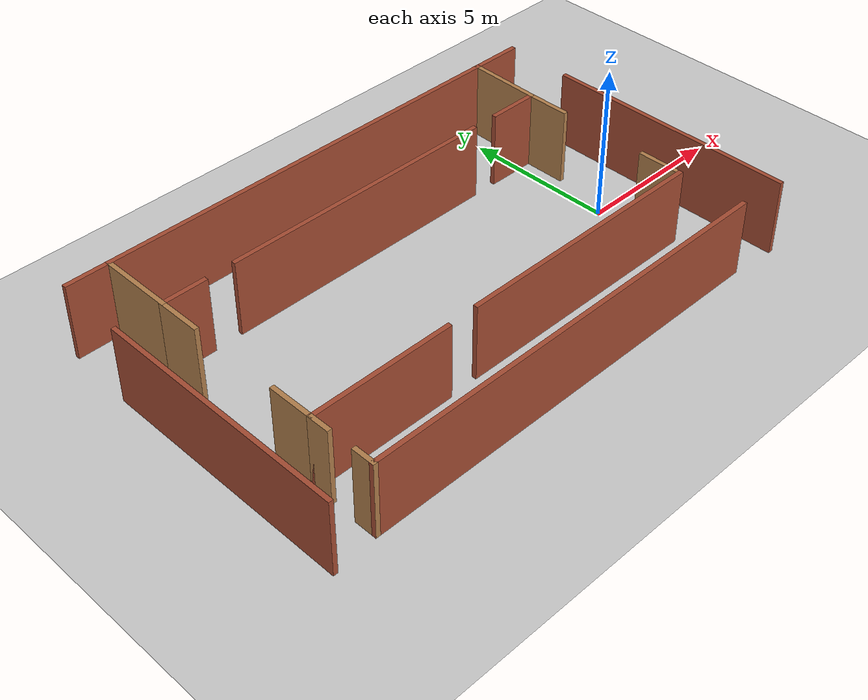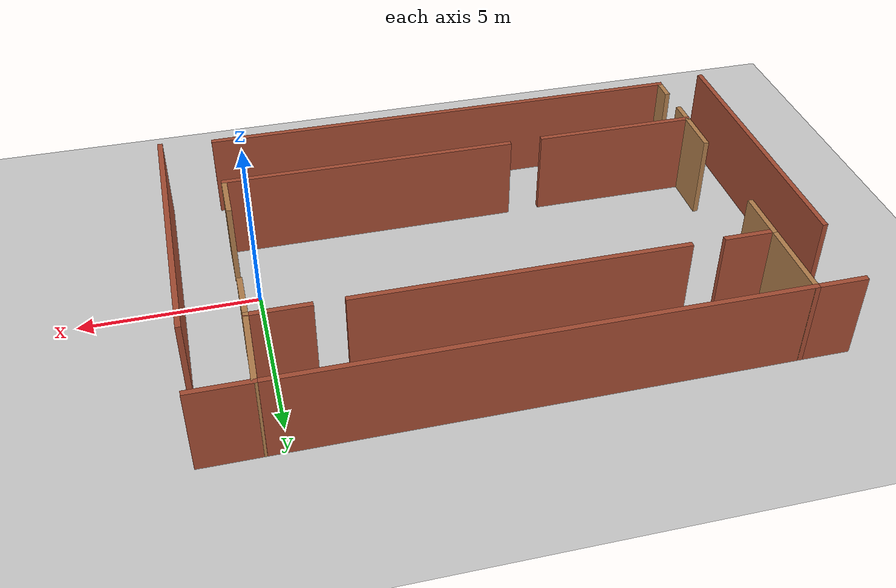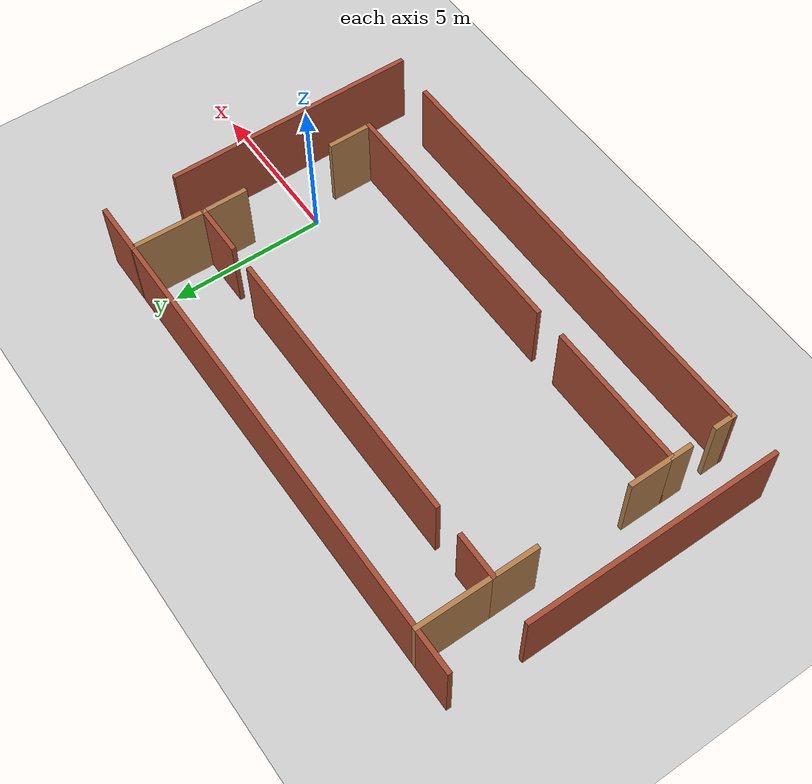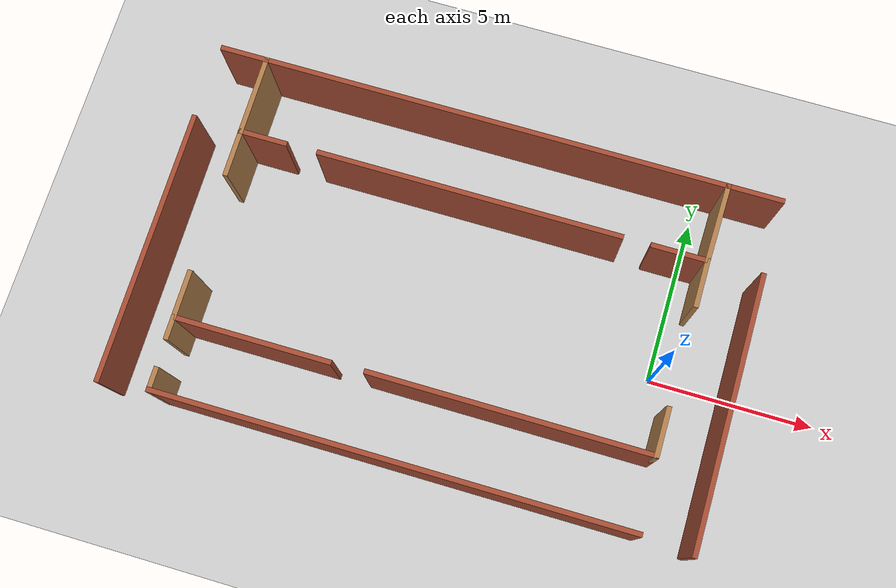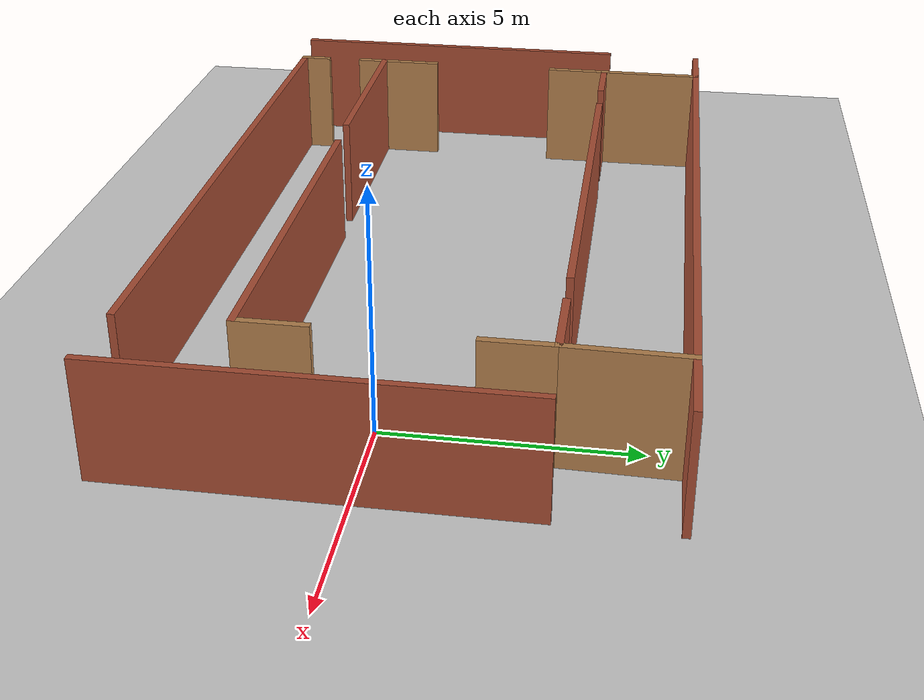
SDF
<sdf version="1.4">
 <world name="default">
  <model name="ground_plane">
   <static>1</static>
   <link name="link">
    <collision name="collision">
     <geometry><plane><normal>0 0 1</normal><size>100 100</size></plane></geometry>
     <surface><friction><ode><mu>100</mu><mu2>50</mu2></ode></friction></surface>
    </collision>
    <visual name="visual">
     <cast_shadows>0</cast_shadows>
     <geometry><plane><normal>0 0 1</normal><size>100 100</size></plane></geometry>
     <material>
      <script><uri>file://media/materials/scripts/gazebo.material</uri><name>Gazebo/Tertiary</name></script>
     </material>
    </visual>
   </link>
  </model>
  <light name="sun" type="directional">
   <pose>0 0 10 0 -0 0</pose>
   <diffuse>0.8 0.8 0.8 1</diffuse>
   <specular>0.2 0.2 0.2 1</specular>
   <attenuation>
    <range>1000</range>
    <constant>0.9</constant>
    <linear>0.01</linear>
    <quadratic>0.001</quadratic>
   </attenuation>
   <direction>-0.5 0.1 -0.9</direction>
  </light>
  <include><uri>model://conference-room</uri><pose>-6.39 0.5 0 0 0 0</pose></include>
 </world>
</sdf>

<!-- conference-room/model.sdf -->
<sdf version='1.6'>
  <model name='conference-room'>
    <pose frame=''>-0.185861 -2.06605 0 0 -0 0</pose>
    <link name='Wall_1'>
      <collision name='Wall_1_Collision'>
        <geometry>
          <box>
            <size>14.25 0.15 2.5</size>
          </box>
        </geometry>
        <pose frame=''>0 0 1.25 0 -0 0</pose>
      </collision>
      <visual name='Wall_1_Visual'>
        <pose frame=''>0 0 1.25 0 -0 0</pose>
        <geometry>
          <box>
            <size>14.25 0.15 2.5</size>
          </box>
        </geometry>
        <material>
          <script>
            <uri>file://media/materials/scripts/gazebo.material</uri>
            <name>Gazebo/Bricks</name>
          </script>
          <ambient>1 1 1 1</ambient>
        </material>
        <meta>
          <layer>0</layer>
        </meta>
      </visual>
      <pose frame=''>-0.055133 -5.08196 0 0 -0 3.14159</pose>
    </link>
    <link name='Wall_14'>
      <collision name='Wall_14_Collision'>
        <geometry>
          <box>
            <size>8.5 0.15 2.5</size>
          </box>
        </geometry>
        <pose frame=''>0 0 1.25 0 -0 0</pose>
      </collision>
      <visual name='Wall_14_Visual'>
        <pose frame=''>0 0 1.25 0 -0 0</pose>
        <geometry>
          <box>
            <size>8.5 0.15 2.5</size>
          </box>
        </geometry>
        <material>
          <script>
            <uri>file://media/materials/scripts/gazebo.material</uri>
            <name>Gazebo/Bricks</name>
          </script>
          <ambient>1 1 1 1</ambient>
        </material>
        <meta>
          <layer>0</layer>
        </meta>
      </visual>
      <pose frame=''>2.7317 -2.90765 0 0 -0 0</pose>
    </link>
    <link name='Wall_16'>
      <collision name='Wall_16_Collision'>
        <geometry>
          <box>
            <size>1.5 0.15 2.5</size>
          </box>
        </geometry>
        <pose frame=''>0 0 1.25 0 -0 0</pose>
      </collision>
      <visual name='Wall_16_Visual'>
        <pose frame=''>0 0 1.25 0 -0 0</pose>
        <geometry>
          <box>
            <size>1.5 0.15 2.5</size>
          </box>
        </geometry>
        <material>
          <script>
            <uri>file://media/materials/scripts/gazebo.material</uri>
            <name>Gazebo/Wood</name>
          </script>
          <ambient>1 1 1 1</ambient>
        </material>
        <meta>
          <layer>0</layer>
        </meta>
      </visual>
      <pose frame=''>-7.13307 -2.26441 0 0 -0 1.5708</pose>
    </link>
    <link name='Wall_18'>
      <collision name='Wall_18_Collision'>
        <geometry>
          <box>
            <size>1.5 0.15 2.5</size>
          </box>
        </geometry>
        <pose frame=''>0 0 1.25 0 -0 0</pose>
      </collision>
      <visual name='Wall_18_Visual'>
        <pose frame=''>0 0 1.25 0 -0 0</pose>
        <geometry>
          <box>
            <size>1.5 0.15 2.5</size>
          </box>
        </geometry>
        <material>
          <script>
            <uri>file://media/materials/scripts/gazebo.material</uri>
            <name>Gazebo/Wood</name>
          </script>
          <ambient>1 1 1 1</ambient>
        </material>
        <meta>
          <layer>0</layer>
        </meta>
      </visual>
      <pose frame=''>-7.1195 2.18742 0 0 -0 1.5708</pose>
    </link>
    <link name='Wall_19'>
      <collision name='Wall_19_Collision'>
        <geometry>
          <box>
            <size>1.5 0.15 2.5</size>
          </box>
        </geometry>
        <pose frame=''>0 0 1.25 0 -0 0</pose>
      </collision>
      <visual name='Wall_19_Visual'>
        <pose frame=''>0 0 1.25 0 -0 0</pose>
        <geometry>
          <box>
            <size>1.5 0.15 2.5</size>
          </box>
        </geometry>
        <material>
          <script>
            <uri>file://media/materials/scripts/gazebo.material</uri>
            <name>Gazebo/Bricks</name>
          </script>
          <ambient>1 1 1 1</ambient>
        </material>
        <meta>
          <layer>0</layer>
        </meta>
      </visual>
      <pose frame=''>-6.4445 2.86242 0 0 -0 0</pose>
    </link>
    <link name='Wall_22'>
      <collision name='Wall_22_Collision'>
        <geometry>
          <box>
            <size>9.25 0.15 2.5</size>
          </box>
        </geometry>
        <pose frame=''>0 0 1.25 0 -0 0</pose>
      </collision>
      <visual name='Wall_22_Visual'>
        <pose frame=''>0 0 1.25 0 -0 0</pose>
        <geometry>
          <box>
            <size>9.25 0.15 2.5</size>
          </box>
        </geometry>
        <material>
          <script>
            <uri>file://media/materials/scripts/gazebo.material</uri>
            <name>Gazebo/Bricks</name>
          </script>
          <ambient>1 1 1 1</ambient>
        </material>
        <meta>
          <layer>0</layer>
        </meta>
      </visual>
      <pose frame=''>-0.166933 2.87736 0 0 -0 0</pose>
    </link>
    <link name='Wall_24'>
      <collision name='Wall_24_Collision'>
        <geometry>
          <box>
            <size>1.75 0.15 2.5</size>
          </box>
        </geometry>
        <pose frame=''>0 0 1.25 0 -0 0</pose>
      </collision>
      <visual name='Wall_24_Visual'>
        <pose frame=''>0 0 1.25 0 -0 0</pose>
        <geometry>
          <box>
            <size>1.75 0.15 2.5</size>
          </box>
        </geometry>
        <material>
          <script>
            <uri>file://media/materials/scripts/gazebo.material</uri>
            <name>Gazebo/Bricks</name>
          </script>
          <ambient>1 1 1 1</ambient>
        </material>
        <meta>
          <layer>0</layer>
        </meta>
      </visual>
      <pose frame=''>6.1308 2.87434 0 0 -0 0</pose>
    </link>
    <link name='Wall_27'>
      <collision name='Wall_27_Collision'>
        <geometry>
          <box>
            <size>2.5 0.15 2.5</size>
          </box>
        </geometry>
        <pose frame=''>0 0 1.25 0 -0 0</pose>
      </collision>
      <visual name='Wall_27_Visual'>
        <pose frame=''>0 0 1.25 0 -0 0</pose>
        <geometry>
          <box>
            <size>2.5 0.15 2.5</size>
          </box>
        </geometry>
        <material>
          <script>
            <uri>file://media/materials/scripts/gazebo.material</uri>
            <name>Gazebo/Wood</name>
          </script>
          <ambient>1 1 1 1</ambient>
        </material>
        <meta>
          <layer>0</layer>
        </meta>
      </visual>
      <pose frame=''>-7.1195 4.03742 0 0 -0 1.5708</pose>
    </link>
    <link name='Wall_28'>
      <collision name='Wall_28_Collision'>
        <geometry>
          <box>
            <size>14.25 0.15 2.5</size>
          </box>
        </geometry>
        <pose frame=''>0 0 1.25 0 -0 0</pose>
      </collision>
      <visual name='Wall_28_Visual'>
        <pose frame=''>0 0 1.25 0 -0 0</pose>
        <geometry>
          <box>
            <size>14.25 0.15 2.5</size>
          </box>
        </geometry>
        <material>
          <script>
            <uri>file://media/materials/scripts/gazebo.material</uri>
            <name>Gazebo/Bricks</name>
          </script>
          <ambient>1 1 1 1</ambient>
        </material>
        <meta>
          <layer>0</layer>
        </meta>
      </visual>
      <pose frame=''>-0.069499 5.21242 0 0 -0 0</pose>
    </link>
    <link name='Wall_29'>
      <collision name='Wall_29_Collision'>
        <geometry>
          <box>
            <size>2.4886 0.15 2.5</size>
          </box>
        </geometry>
        <pose frame=''>0 0 1.25 0 -0 0</pose>
      </collision>
      <visual name='Wall_29_Visual'>
        <pose frame=''>0 0 1.25 0 -0 0</pose>
        <geometry>
          <box>
            <size>2.4886 0.15 2.5</size>
          </box>
        </geometry>
        <material>
          <script>
            <uri>file://media/materials/scripts/gazebo.material</uri>
            <name>Gazebo/Wood</name>
          </script>
          <ambient>1 1 1 1</ambient>
        </material>
        <meta>
          <layer>0</layer>
        </meta>
      </visual>
      <pose frame=''>6.95565 4.04338 0 0 -0 -1.59205</pose>
    </link>
    <link name='Wall_31'>
      <collision name='Wall_31_Collision'>
        <geometry>
          <box>
            <size>1.5 0.15 2.5</size>
          </box>
        </geometry>
        <pose frame=''>0 0 1.25 0 -0 0</pose>
      </collision>
      <visual name='Wall_31_Visual'>
        <pose frame=''>0 0 1.25 0 -0 0</pose>
        <geometry>
          <box>
            <size>1.5 0.15 2.5</size>
          </box>
        </geometry>
        <material>
          <script>
            <uri>file://media/materials/scripts/gazebo.material</uri>
            <name>Gazebo/Wood</name>
          </script>
          <ambient>1 1 1 1</ambient>
        </material>
        <meta>
          <layer>0</layer>
        </meta>
      </visual>
      <pose frame=''>6.9067 -2.23265 0 0 -0 1.5708</pose>
    </link>
    <link name='Wall_33'>
      <collision name='Wall_33_Collision'>
        <geometry>
          <box>
            <size>1.5 0.15 2.5</size>
          </box>
        </geometry>
        <pose frame=''>0 0 1.25 0 -0 0</pose>
      </collision>
      <visual name='Wall_33_Visual'>
        <pose frame=''>0 0 1.25 0 -0 0</pose>
        <geometry>
          <box>
            <size>1.5 0.15 2.5</size>
          </box>
        </geometry>
        <material>
          <script>
            <uri>file://media/materials/scripts/gazebo.material</uri>
            <name>Gazebo/Wood</name>
          </script>
          <ambient>1 1 1 1</ambient>
        </material>
        <meta>
          <layer>0</layer>
        </meta>
      </visual>
      <pose frame=''>6.9308 2.19935 0 0 -0 -1.5708</pose>
    </link>
    <link name='Wall_35'>
      <collision name='Wall_35_Collision'>
        <geometry>
          <box>
            <size>8.25 0.15 2.5</size>
          </box>
        </geometry>
        <pose frame=''>0 0 1.25 0 -0 0</pose>
      </collision>
      <visual name='Wall_35_Visual'>
        <pose frame=''>0 0 1.25 0 -0 0</pose>
        <geometry>
          <box>
            <size>8.25 0.15 2.5</size>
          </box>
        </geometry>
        <material>
          <script>
            <uri>file://media/materials/scripts/gazebo.material</uri>
            <name>Gazebo/Bricks</name>
          </script>
          <ambient>1 1 1 1</ambient>
        </material>
        <meta>
          <layer>0</layer>
        </meta>
      </visual>
      <pose frame=''>-8.5805 -1.164 0 0 -0 -1.5708</pose>
    </link>
    <link name='Wall_37'>
      <collision name='Wall_37_Collision'>
        <geometry>
          <box>
            <size>8.25 0.15 2.5</size>
          </box>
        </geometry>
        <pose frame=''>0 0 1.25 0 -0 0</pose>
      </collision>
      <visual name='Wall_37_Visual'>
        <pose frame=''>0 0 1.25 0 -0 0</pose>
        <geometry>
          <box>
            <size>8.25 0.15 2.5</size>
          </box>
        </geometry>
        <material>
          <script>
            <uri>file://media/materials/scripts/gazebo.material</uri>
            <name>Gazebo/Bricks</name>
          </script>
          <ambient>1 1 1 1</ambient>
        </material>
        <meta>
          <layer>0</layer>
        </meta>
      </visual>
      <pose frame=''>8.55928 -1.164 0 0 -0 -1.5708</pose>
    </link>
    <link name='Wall_39'>
      <collision name='Wall_39_Collision'>
        <geometry>
          <box>
            <size>1.5 0.15 2.5</size>
          </box>
        </geometry>
        <pose frame=''>0 0 1.25 0 -0 0</pose>
      </collision>
      <visual name='Wall_39_Visual'>
        <pose frame=''>0 0 1.25 0 -0 0</pose>
        <geometry>
          <box>
            <size>1.5 0.15 2.5</size>
          </box>
        </geometry>
        <material>
          <script>
            <uri>file://media/materials/scripts/gazebo.material</uri>
            <name>Gazebo/Bricks</name>
          </script>
          <ambient>1 1 1 1</ambient>
        </material>
        <meta>
          <layer>0</layer>
        </meta>
      </visual>
      <pose frame=''>-7.7945 5.21242 0 0 -0 3.14159</pose>
    </link>
    <link name='Wall_41'>
      <collision name='Wall_41_Collision'>
        <geometry>
          <box>
            <size>1.75 0.15 2.5</size>
          </box>
        </geometry>
        <pose frame=''>0 0 1.25 0 -0 0</pose>
      </collision>
      <visual name='Wall_41_Visual'>
        <pose frame=''>0 0 1.25 0 -0 0</pose>
        <geometry>
          <box>
            <size>1.75 0.15 2.5</size>
          </box>
        </geometry>
        <material>
          <script>
            <uri>file://media/materials/scripts/gazebo.material</uri>
            <name>Gazebo/Bricks</name>
          </script>
          <ambient>1 1 1 1</ambient>
        </material>
        <meta>
          <layer>0</layer>
        </meta>
      </visual>
      <pose frame=''>7.7805 5.21242 0 0 -0 0</pose>
    </link>
    <link name='Wall_5'>
      <collision name='Wall_5_Collision'>
        <geometry>
          <box>
            <size>0.75 0.15 2.5</size>
          </box>
        </geometry>
        <pose frame=''>0 0 1.25 0 -0 0</pose>
      </collision>
      <visual name='Wall_5_Visual'>
        <pose frame=''>0 0 1.25 0 -0 0</pose>
        <geometry>
          <box>
            <size>0.75 0.15 2.5</size>
          </box>
        </geometry>
        <material>
          <script>
            <uri>file://media/materials/scripts/gazebo.material</uri>
            <name>Gazebo/Wood</name>
          </script>
          <ambient>1 1 1 1</ambient>
        </material>
        <meta>
          <layer>0</layer>
        </meta>
      </visual>
      <pose frame=''>-7.10513 -4.78196 0 0 -0 1.5708</pose>
    </link>
    <link name='Wall_8'>
      <collision name='Wall_8_Collision'>
        <geometry>
          <box>
            <size>0.75 0.15 2.5</size>
          </box>
        </geometry>
        <pose frame=''>0 0 1.25 0 -0 0</pose>
      </collision>
      <visual name='Wall_8_Visual'>
        <pose frame=''>0 0 1.25 0 -0 0</pose>
        <geometry>
          <box>
            <size>0.75 0.15 2.5</size>
          </box>
        </geometry>
        <material>
          <script>
            <uri>file://media/materials/scripts/gazebo.material</uri>
            <name>Gazebo/Wood</name>
          </script>
          <ambient>1 1 1 1</ambient>
        </material>
        <meta>
          <layer>0</layer>
        </meta>
      </visual>
      <pose frame=''>-7.13307 -3.23941 0 0 -0 1.5708</pose>
    </link>
    <link name='Wall_9'>
      <collision name='Wall_9_Collision'>
        <geometry>
          <box>
            <size>4.75 0.15 2.5</size>
          </box>
        </geometry>
        <pose frame=''>0 0 1.25 0 -0 0</pose>
      </collision>
      <visual name='Wall_9_Visual'>
        <pose frame=''>0 0 1.25 0 -0 0</pose>
        <geometry>
          <box>
            <size>4.75 0.15 2.5</size>
          </box>
        </geometry>
        <material>
          <script>
            <uri>file://media/materials/scripts/gazebo.material</uri>
            <name>Gazebo/Bricks</name>
          </script>
          <ambient>1 1 1 1</ambient>
        </material>
        <meta>
          <layer>0</layer>
        </meta>
      </visual>
      <pose frame=''>-4.83307 -2.9394 0 0 -0 0</pose>
    </link>
    <static>1</static>
  </model>
</sdf>
